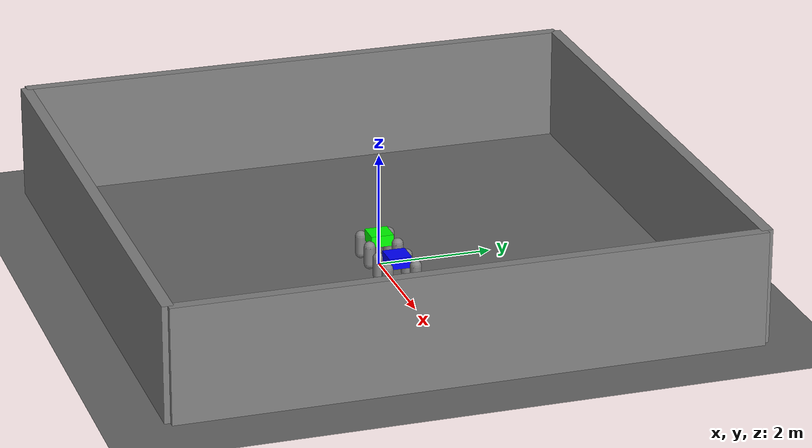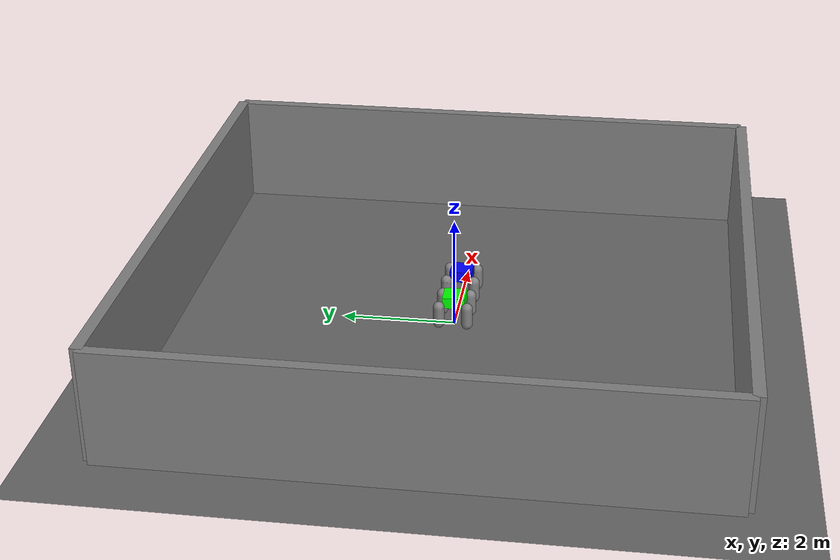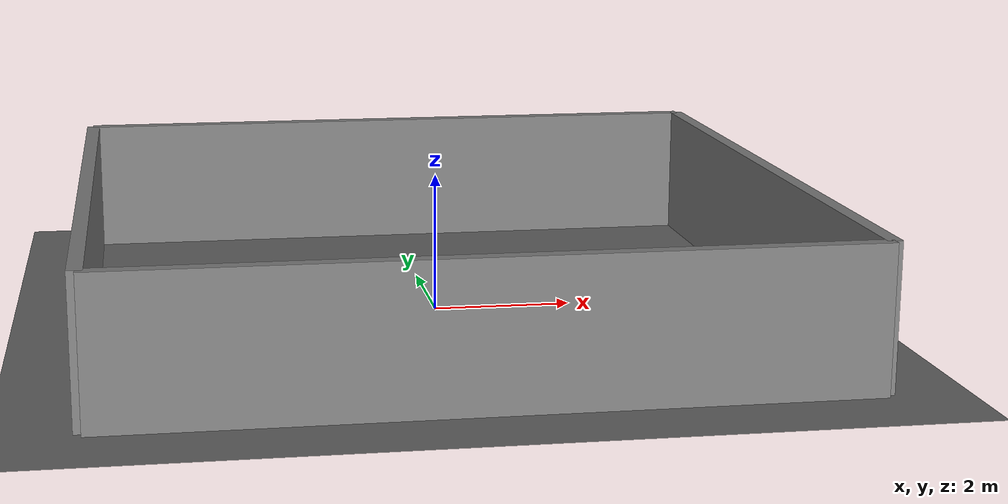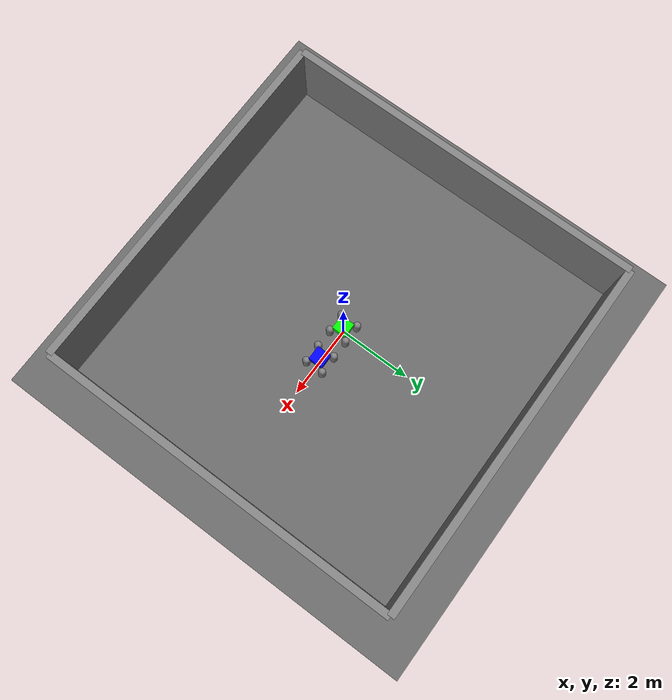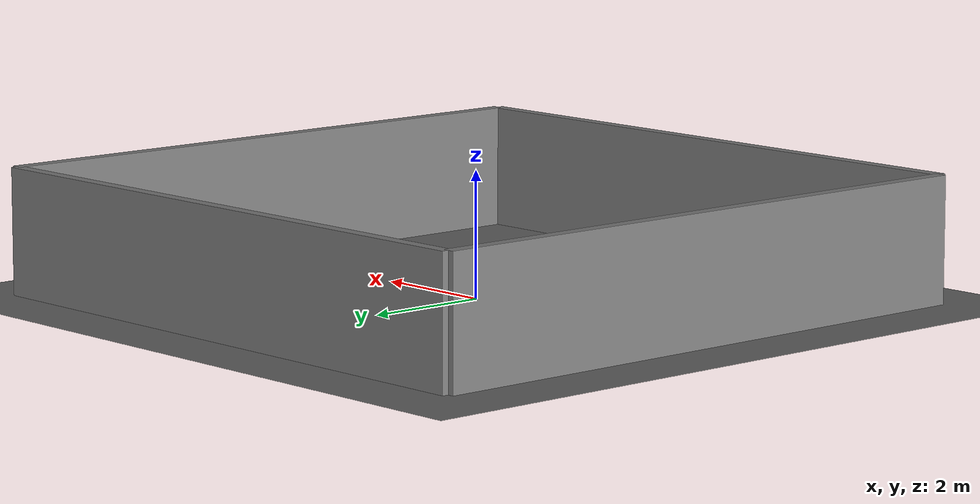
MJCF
<mujoco model="point_mass">
  <compiler angle="degree" coordinate="local" inertiafromgeom="true"/>
  <option timestep="0.02" iterations="4"/>
  <custom>
    <!-- brax custom params -->
    <numeric data="1000" name="constraint_limit_stiffness"/>
    <numeric data="4000" name="constraint_stiffness"/>
    <numeric data="10" name="constraint_ang_damping"/>
    <numeric data="20" name="constraint_vel_damping"/>
    <numeric data="0.5" name="joint_scale_pos"/>
    <numeric data="0.2" name="joint_scale_ang"/>
    <numeric data="0.0" name="ang_damping"/>
    <numeric data="1" name="spring_mass_scale"/>
    <numeric data="1" name="spring_inertia_scale"/>
    <numeric data="15" name="solver_maxls"/>
  </custom>

  <default>
    <joint armature="1" damping="1" limited="true"/>
    <geom contype="0" conaffinity="0" condim="3" density="5.0" friction="1 0.5 0.5"
     rgba="0.5 0.5 0.5 1"/>
  </default>

  <asset>

    <texture builtin="gradient" height="100" rgb1="1 1 1" rgb2="0 0 0" type="skybox" width="100"/>
    <texture builtin="flat" height="1278" mark="cross" markrgb="1 1 1" name="texgeom" random="0.01" rgb1="0.8 0.6 0.4" rgb2="0.8 0.6 0.4" type="cube" width="127"/>
    <texture builtin="checker" height="100" name="texplane" rgb1="0 0 0" rgb2="0.8 0.8 0.8" type="2d" width="100"/>
    <material name="MatPlane" reflectance="0.5" shininess="1" specular="1" texrepeat="60 60" texture="texplane"/>
    <material name="geom" texture="texgeom" texuniform="true"/>
    <material name="grey" reflectance="0.5"/>
  </asset>

  <worldbody>
    <light cutoff="100" diffuse="1 1 1" dir="-0 0 -1.3" directional="true" exponent="1" pos="0 0 1.3" specular=".1 .1 .1"/>
    <geom conaffinity="1" condim="3" material="MatPlane" name="floor" pos="0 0 0" size="40 40 40" type="plane" rgba="0.5 0.5 0.5 1.0" friction="1 .1 .1"/>
    <body name="torso_a_1" pos="0 0 0.5" >
            <joint armature="0" damping="0" limited="false" margin="0.01" name="root_a1" pos="0 0 0.075" type="free"/>
            <geom name="torso_geom_a1" type="box" size="0.2 0.2 0.1" rgba="0.0 1.0 0.0 1" contype="0" conaffinity="0"/>
            <body name="limb1_a_1" pos="0.25 0.25 -0.2">
                <joint name="joint1_a1" type="hinge" pos="0 0 0" axis="1 0 0" range="-50 50"/>
                <geom name="limb1_geom_a_1" type="capsule" size="0.1 0.15" rgba="0.5 0.5 0.5 1"  contype="1"/>
            </body>
            <body name="limb2_a_1" pos="0.25 -0.25 -0.2">
                <joint name="joint2_a1" type="hinge" pos="0 0 0" axis="0 1 0" range="-50 50"/>
                <geom name="limb2_geom_a_1" type="capsule" size="0.1 0.15" rgba="0.5 0.5 0.5 1"  contype="1"/>
            </body>
            <body name="limb3_a_1" pos="-0.25 0.25 -0.2">
                <joint name="joint3_a1" type="hinge" pos="0.0 0 0" axis="0 1 0" range="-50 50"/>
                <geom name="limb3_geom_a_1" type="capsule" size="0.1 0.15" rgba="0.5 0.5 0.5 1"  contype="1"/>
            </body>
            <body name="limb4_a_1" pos="-0.25 -0.25 -0.2">
                <joint name="joint4_a1" type="hinge" pos="0.1 0 0" axis="1 0 0" range="-50 50"/>
                <geom name="limb4_geom_a_1" type="capsule" size="0.1 0.15" rgba="0.5 0.5 0.5 1" contype="1"/>
            </body>
    </body>
    <body name="torso_a_2" pos="1.0 0 0.5" >
            <joint armature="0" damping="0" limited="false" margin="0.01" name="root_a2" pos="0 0 0.075" type="free"/>
            <geom name="torso_geom_a2" type="box" size="0.2 0.2 0.1" rgba="0.0 0.0 1.0 1" contype="0" conaffinity="0"/>
            <body name="limb1_a_2" pos="0.25 0.25 -0.2">
                <joint name="joint1_a2" type="hinge" pos="0 0 0" axis="1 0 0" range="-50 50"/>
                <geom name="limb1_geom_a_2" type="capsule" size="0.1 0.15" rgba="0.5 0.5 0.5 1"  contype="1"/>
            </body>
            <body name="limb2_a_2" pos="0.25 -0.25 -0.2">
                <joint name="joint2_a2" type="hinge" pos="0 0 0" axis="0 1 0" range="-50 50"/>
                <geom name="limb2_geom_a_2" type="capsule" size="0.1 0.15" rgba="0.5 0.5 0.5 1"  contype="1"/>
            </body>
            <body name="limb3_a_2" pos="-0.25 0.25 -0.2">
                <joint name="joint3_a2" type="hinge" pos="0.0 0 0" axis="0 1 0" range="-50 50"/>
                <geom name="limb3_geom_a_2" type="capsule" size="0.1 0.15" rgba="0.5 0.5 0.5 1"  contype="1"/>
            </body>
            <body name="limb4_a_2" pos="-0.25 -0.25 -0.2">
                <joint name="joint4_a2" type="hinge" pos="0.1 0 0" axis="1 0 0" range="-50 50"/>
                <geom name="limb4_geom_a_2" type="capsule" size="0.1 0.15" rgba="0.5 0.5 0.5 1" contype="1"/>
            </body>
    </body>
    <geom conaffinity="1" condim="3" name="wall_1" type="box" size="0.1 5 1" pos="5 0 1"/>
    <geom conaffinity="1" condim="3" name="wall_2" type="box" size="0.1 5 1" pos="0 5 1" quat="0.5071 0 0 0.5071"/>
    <geom conaffinity="1" condim="3" name="wall_3" type="box" size="0.1 5 1" pos="0 -5 1" quat="0.5071 0 0 0.5071"/>
    <geom conaffinity="1" condim="3" name="wall_4" type="box" size="0.1 5 1" pos="-5 0 1"/>
  </worldbody>

  <actuator>
    <motor ctrllimited="true" ctrlrange="-1.0 1.0" joint="joint1_a1" gear="100"/>
    <motor ctrllimited="true" ctrlrange="-1.0 1.0" joint="joint2_a1" gear="100"/>
    <motor ctrllimited="true" ctrlrange="-1.0 1.0" joint="joint3_a1" gear="100"/>
    <motor ctrllimited="true" ctrlrange="-1.0 1.0" joint="joint4_a1" gear="100"/>
    <motor ctrllimited="true" ctrlrange="-1.0 1.0" joint="joint1_a2" gear="100"/>
    <motor ctrllimited="true" ctrlrange="-1.0 1.0" joint="joint2_a2" gear="100"/>
    <motor ctrllimited="true" ctrlrange="-1.0 1.0" joint="joint3_a2" gear="100"/>
    <motor ctrllimited="true" ctrlrange="-1.0 1.0" joint="joint4_a2" gear="100"/>
  </actuator>

</mujoco>
